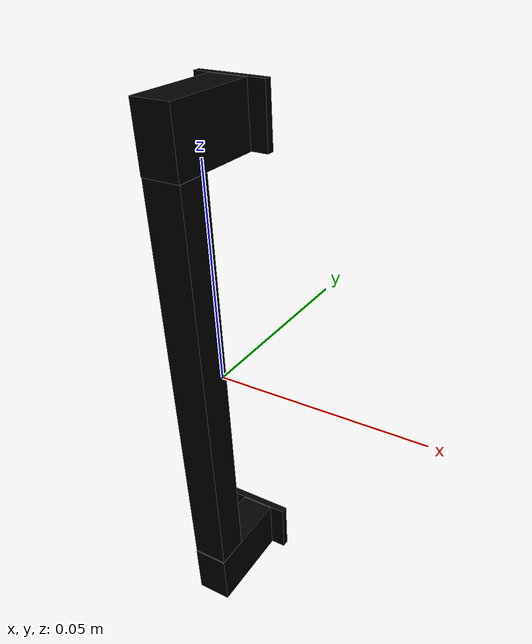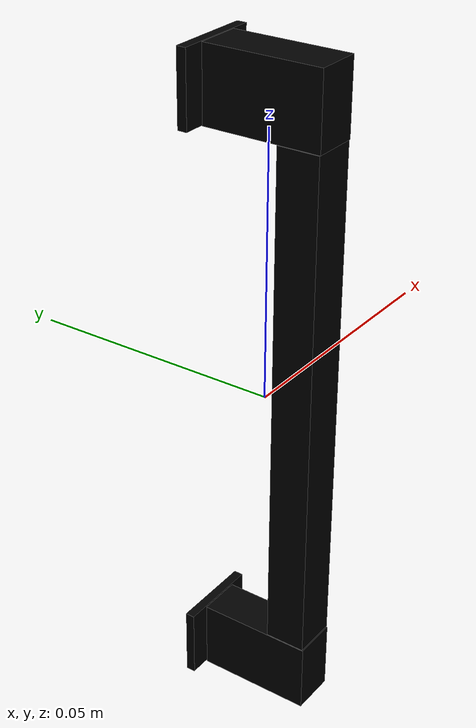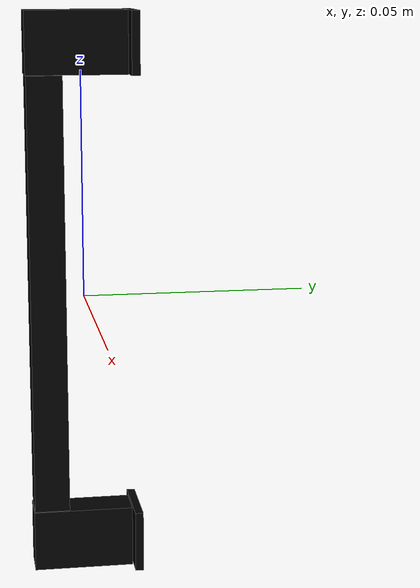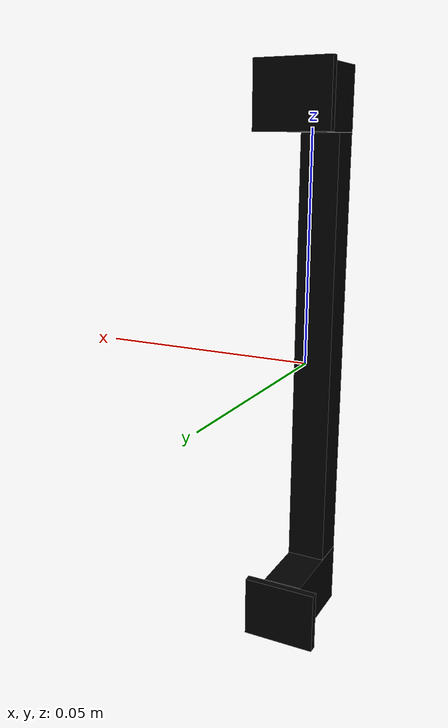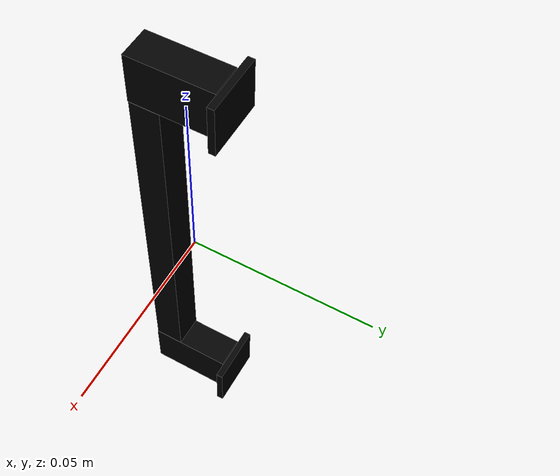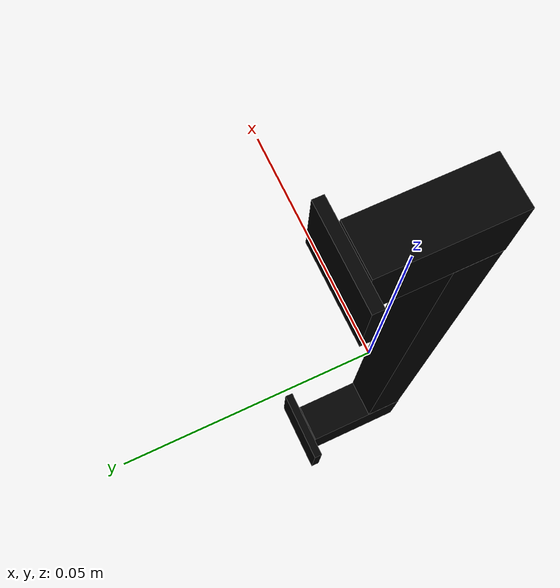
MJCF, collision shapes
<?xml version="1.0" ?>
<mujoco model="model">
    <compiler angle="radian"/>
    <asset>
        <mesh file="visuals/CabinetHandle040.obj" name="mesh"/>
        <texture file="visuals/T_BC001.png" name="tex" type="2d"/>
        <material name="mat" rgba="1 1 1 1.0" texture="tex" shininess="0.4472135901451111" specular="0.3103448502657381"/>
    </asset>
    <default>
        <default class="visual">
            <geom conaffinity="0" contype="0" group="1" type="mesh"/>
        </default>
        <default class="collision">
            <geom group="0" rgba="0 0 0 0"/>
        </default>
        <default class="spawn">
            <geom group="0" rgba="0 0 0 0" contype="0" conaffinity="0"/>
            <site group="0" rgba="0 0 0 0"/>
        </default>
    </default>
    <worldbody>
        <body>
            <body name="object">
                <geom mesh="mesh" type="mesh" solimp="0.998 0.998 0.001" solref="0.001 1" density="100" friction="0.95 0.3 0.1" class="visual" material="mat"/>
                <geom class="collision" type="box" pos="6.8483154791465495e-06 -0.008185677230358124 0.00010885679512284696" size="0.004304052330553532 0.003939042799174786 0.049037229269742966" quat="1.0 0.0 0.0 0.0"/>
                <geom class="collision" type="box" pos="-1.0648273018887267e-05 0.011166449636220932 0.05609428882598877" size="0.008180255070328712 0.0009067287901416421 0.0068619148805737495" quat="1.0 0.0 0.0 0.0" name="handle_connector"/>
                <geom class="collision" type="box" pos="6.8483154791465495e-06 -0.0011238816659897566 0.05609428882598877" size="0.004304052330553532 0.011155414395034313 0.0068619148805737495" quat="1.0 0.0 0.0 0.0"/>
                <geom class="collision" type="box" pos="6.8483154791465495e-06 -0.0011238825973123312 -0.05594936013221741" size="0.004304052330553532 0.011155414395034313 0.0068619148805737495" quat="1.0 0.0 0.0 0.0"/>
                <geom class="collision" type="box" pos="-1.0648273018887267e-05 0.011166449636220932 -0.05594936013221741" size="0.008180255070328712 0.0009067287901416421 0.0068619148805737495" quat="1.0 0.0 0.0 0.0"/>
            </body>
        </body>
    </worldbody>
    <actuator/>
</mujoco>
